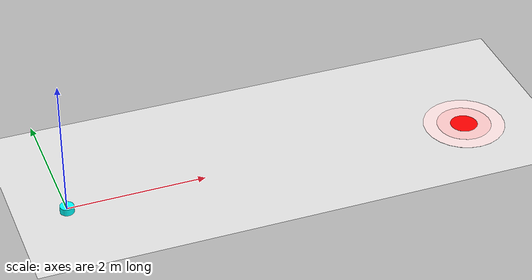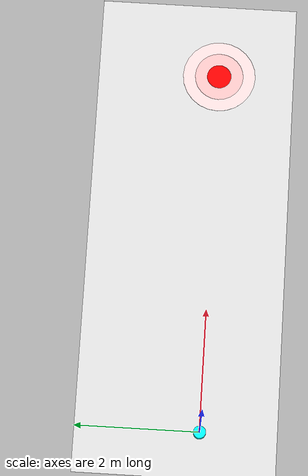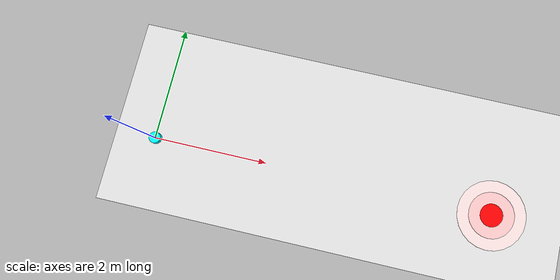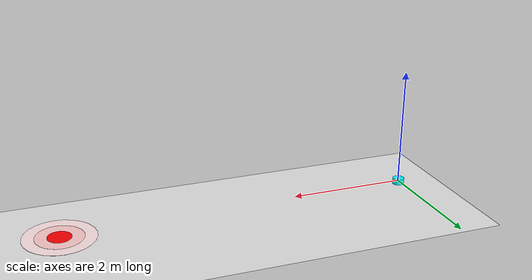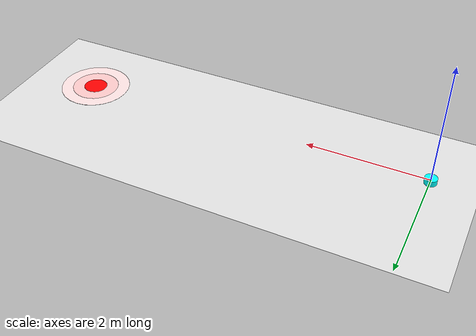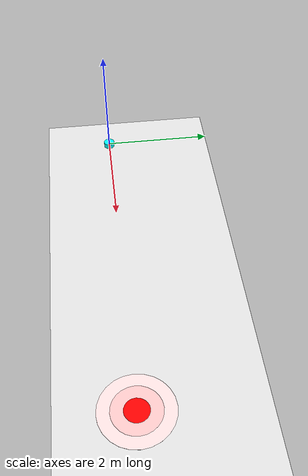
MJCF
<!-- Copied from https://github.com/personalrobotics/nonprehensile-controllers/tree/master/envs -->
<mujoco model="pusher_plane_2d">
    <compiler angle="radian" inertiafromgeom="true"/>
    <default>
        <joint armature="1" damping="1" limited="true"/>
        <geom contype="0" friction="1. 0.1 0.1" rgba="0.7 0.7 0 1" solimp=".5 .5 .001" solref=".02 10"/>
    </default>
    <option integrator="RK4" timestep="0.01" gravity="0 0 -9.81" />
    <worldbody>
        <!-- Ground -->
        <geom conaffinity="1" contype="1" name="ground" pos="4 0 -0.05" rgba="0.9 0.9 0.9 1" size="10 2 0.02" type="plane" condim="3"
          friction='0 0 0'/>
        <!-- Starting line -->
        <geom conaffinity="0" contype="0" name="startline" pos="0 0 -0.0049" rgba="1 0 0 1" size="0.01 2 0.01" type="plane"/>

        <!-- Pusher -->
        <!-- Object -->
        <body name="object" pos="0. 0.0 0.0" >

            <geom rgba="0 1 1 1" type="cylinder" size="0.1 0.05 0.02" density='25.0' contype="1" conaffinity="1" condim="3" friction="0 0 0"/>
            <joint name="object_slidex" type="slide" pos="0 0 0" axis="1 0 0" range="-10.3213 10.3" damping="0.1"/>
            <joint name="object_slidey" type="slide" pos="0 0 0" axis="0 1 0" range="-10.3213 10.3" damping="0.1"/>
            <joint name="object_hinge"  type="hinge" pos="0 0 0" axis="0 0 1" range="-1000 1000"   damping="0.5"/>
            <joint name="object_slidez" type="slide" pos="0 0 0" axis="0 0 1" range="-10.3   10.3"   damping="0.1"/>
        </body>
        <!-- Object Goal -->
        <body name="goal" pos="6 0 -0.049">
            <geom rgba="1 0   0   1"   type="cylinder" pos="0 0 0.0002"  size="0.2 0.001 0.05" contype="0" conaffinity="0"/>
            <geom rgba="1 0.8 0.8 1"   type="cylinder" pos="0 0 0.0001" size="0.4 0.001 0.05" contype="0" conaffinity="0"/>
            <geom rgba="1 .9   .9   1"  type="cylinder" pos="0 0 0"   size="0.6 0.001 0.05" contype="0" conaffinity="0"/>
            <joint name="goal_slidey" type="slide" pos="0 0 0" axis="0 1 0" range="-10.3213 10.3" damping="0."/>
        </body>
        <body name="bad_goal" pos="6 0 -0.049">
            <geom rgba="0   0 1 1" type="cylinder" pos="0 0 0.0002"  size="0.2 0.001 0.05" contype="0" conaffinity="0"/>
            <geom rgba=".8 .8 1 1" type="cylinder" pos="0 0 0.0001" size="0.4 0.001 0.05" contype="0" conaffinity="0"/>
            <geom rgba=".9 .9 1 1" type="cylinder" pos="0 0 0"   size="0.6 0.001 0.05" contype="0" conaffinity="0"/>
            <joint name="bgoal_slidey" type="slide" pos="0 0 0" axis="0 1 0" range="-10.3213 10.3" damping="0."/>
        </body>
        <camera euler="0 0 0" fovy="50" name="top_cam" pos="0 0 1.0"></camera>

    </worldbody>
    <actuator>
        <motor ctrllimited="true" ctrlrange="-1.0 1.0" gear="200.0" joint="object_slidex"/>
        <motor ctrllimited="true" ctrlrange="-1.0 1.0" gear="200.0" joint="object_slidey"/>
        <motor ctrllimited="true" ctrlrange="-1.0 1.0" gear="200.0" joint="object_hinge"/>
    </actuator>
</mujoco>
